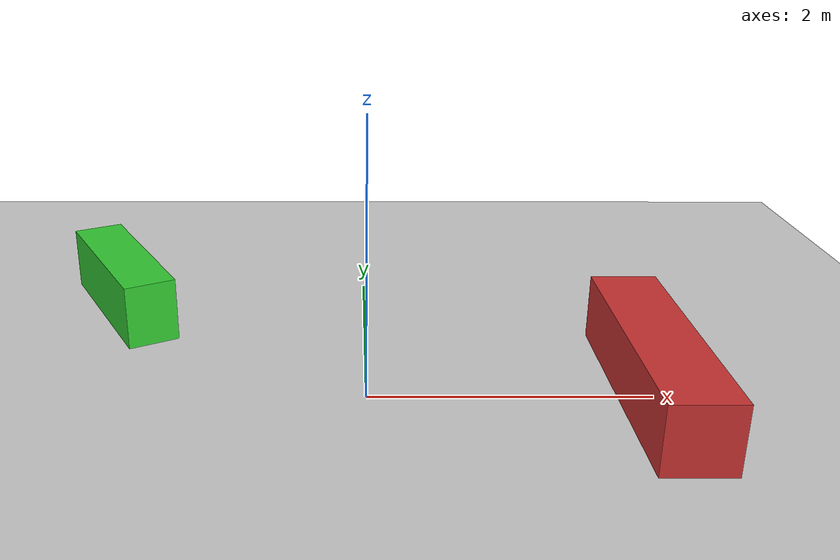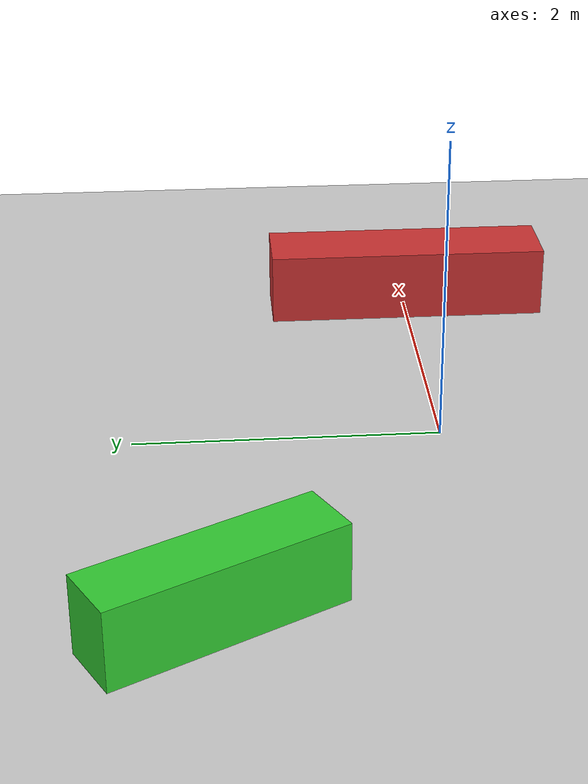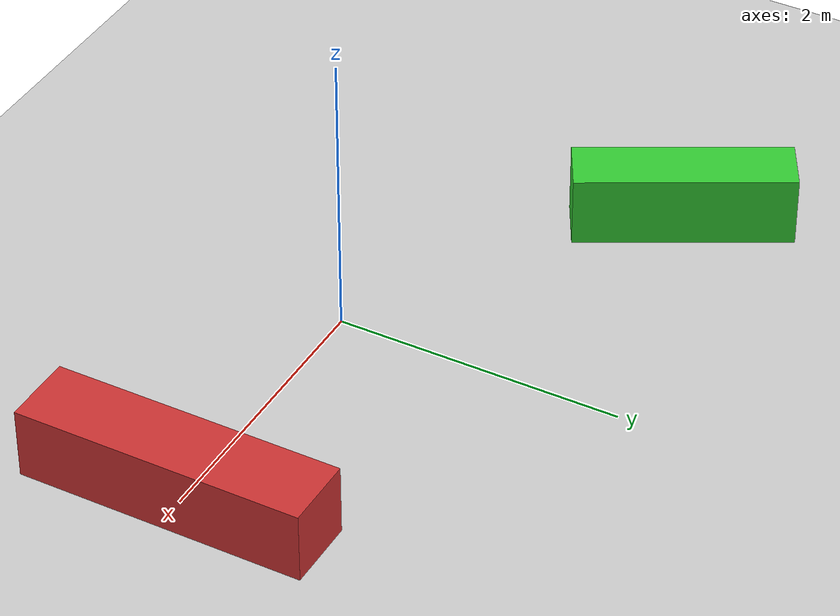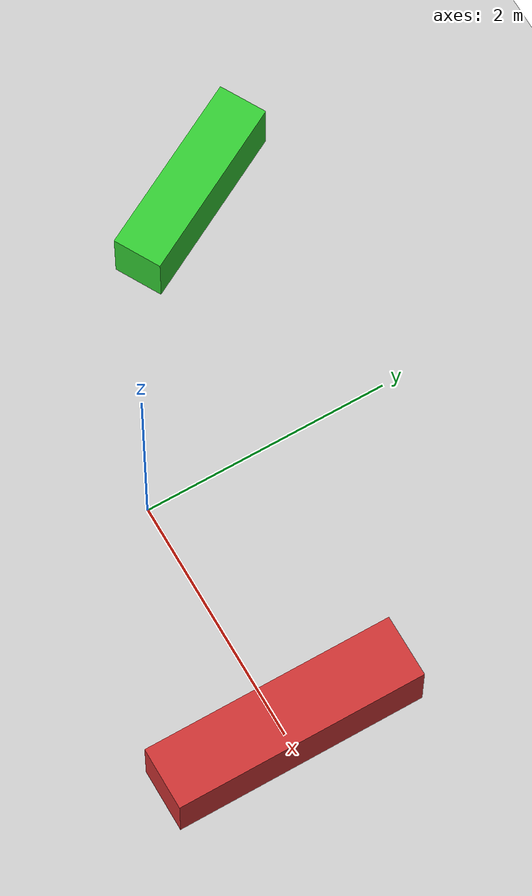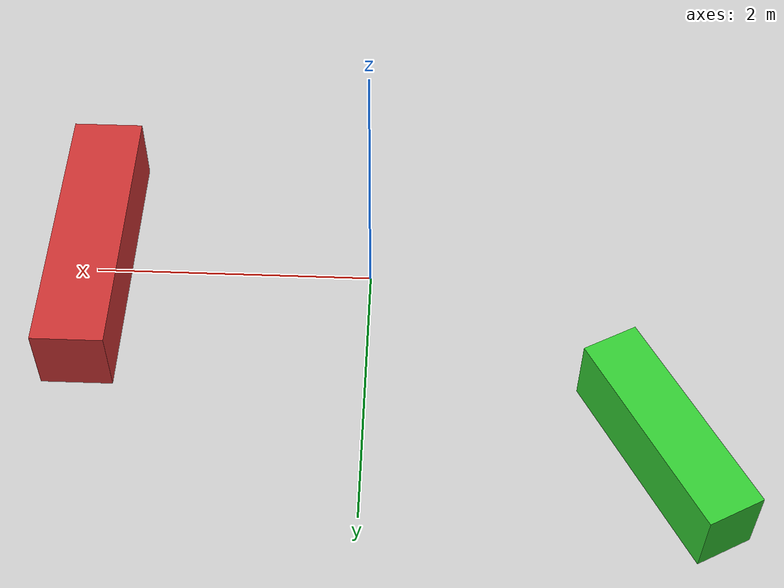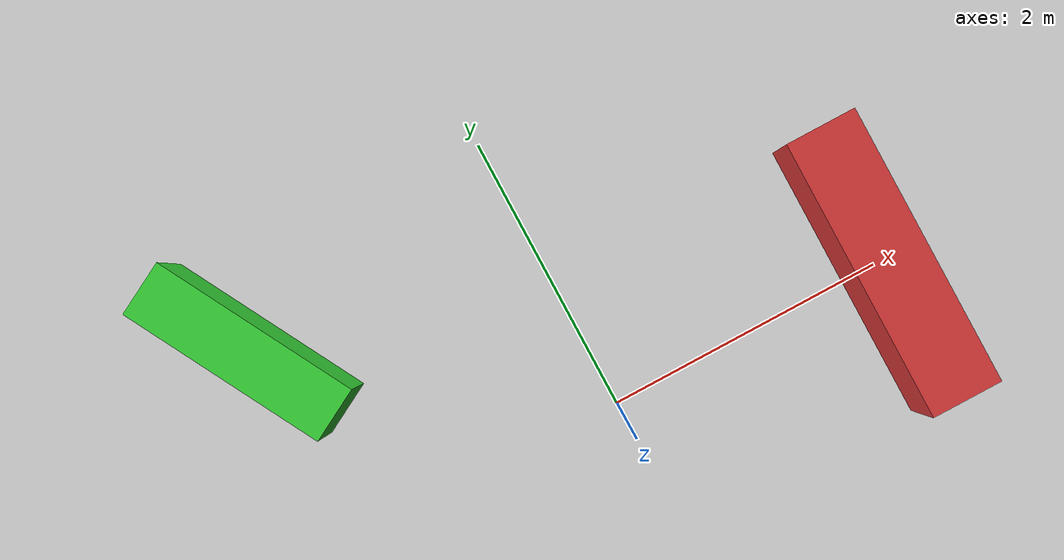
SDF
<?xml version="1.0" ?>
<sdf version="1.6">
  <world name="sensor_world">
    <!-- Physics -->
    <physics name="1ms" type="ignored">
      <max_step_size>0.001</max_step_size>
      <real_time_factor>1.0</real_time_factor>
    </physics>

    <!-- Required system plugins -->
    <plugin filename="ignition-gazebo-physics-system"
            name="gz::sim::systems::Physics"/>
    <plugin filename="ignition-gazebo-user-commands-system"
            name="gz::sim::systems::UserCommands"/>
    <plugin filename="ignition-gazebo-scene-broadcaster-system"
            name="gz::sim::systems::SceneBroadcaster"/>
    <plugin filename="ignition-gazebo-contact-system"
            name="gz::sim::systems::Contact"/>
    <!-- Sensors system required for gpu_lidar and camera -->
    <plugin filename="ignition-gazebo-sensors-system"
            name="gz::sim::systems::Sensors">
      <render_engine>ogre2</render_engine>
    </plugin>

    <!-- Lighting -->
    <light type="directional" name="sun">
      <cast_shadows>true</cast_shadows>
      <pose>0 0 10 0 0 0</pose>
      <diffuse>0.8 0.8 0.8 1</diffuse>
      <specular>0.2 0.2 0.2 1</specular>
      <attenuation>
        <range>1000</range>
        <constant>0.9</constant>
        <linear>0.01</linear>
        <quadratic>0.001</quadratic>
      </attenuation>
      <direction>-0.5 0.1 -0.9</direction>
    </light>

    <!-- Ground plane -->
    <model name="ground_plane">
      <static>true</static>
      <link name="link">
        <collision name="collision">
          <geometry>
            <plane><normal>0 0 1</normal><size>100 100</size></plane>
          </geometry>
        </collision>
        <visual name="visual">
          <geometry>
            <plane><normal>0 0 1</normal><size>100 100</size></plane>
          </geometry>
          <material>
            <ambient>0.8 0.8 0.8 1</ambient>
            <diffuse>0.8 0.8 0.8 1</diffuse>
            <specular>0.8 0.8 0.8 1</specular>
          </material>
        </visual>
      </link>
    </model>

    <!-- Obstacle — box (visible to LiDAR and camera) -->
    <model name="obstacle_1">
      <static>true</static>
      <pose>2 0 0.25 0 0 0</pose>
      <link name="link">
        <collision name="collision">
          <geometry><box><size>0.5 2.0 0.5</size></box></geometry>
        </collision>
        <visual name="visual">
          <geometry><box><size>0.5 2.0 0.5</size></box></geometry>
          <material>
            <ambient>0.8 0.2 0.2 1</ambient>
            <diffuse>0.8 0.2 0.2 1</diffuse>
          </material>
        </visual>
      </link>
    </model>

    <!-- Obstacle — box -->
    <model name="obstacle_2">
      <static>true</static>
      <pose>-2 1.5 0.25 0 0 0.5</pose>
      <link name="link">
        <collision name="collision">
          <geometry><box><size>0.4 1.5 0.5</size></box></geometry>
        </collision>
        <visual name="visual">
          <geometry><box><size>0.4 1.5 0.5</size></box></geometry>
          <material>
            <ambient>0.2 0.8 0.2 1</ambient>
            <diffuse>0.2 0.8 0.2 1</diffuse>
          </material>
        </visual>
      </link>
    </model>

  </world>
</sdf>
